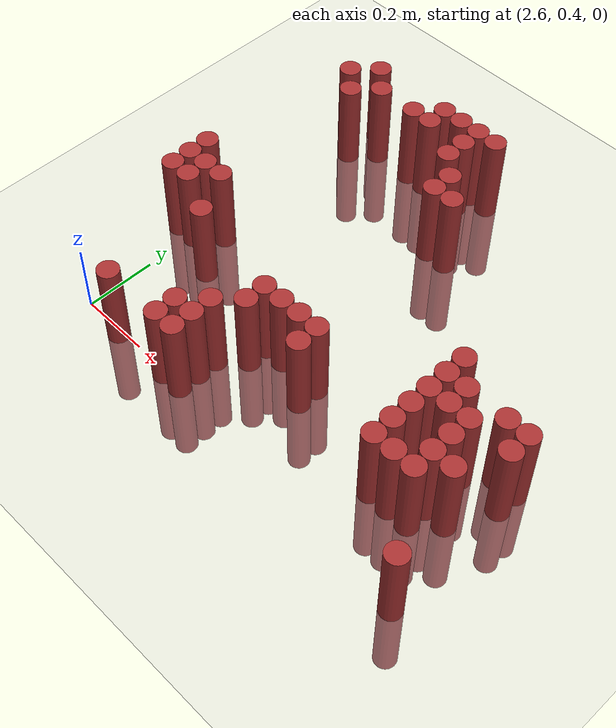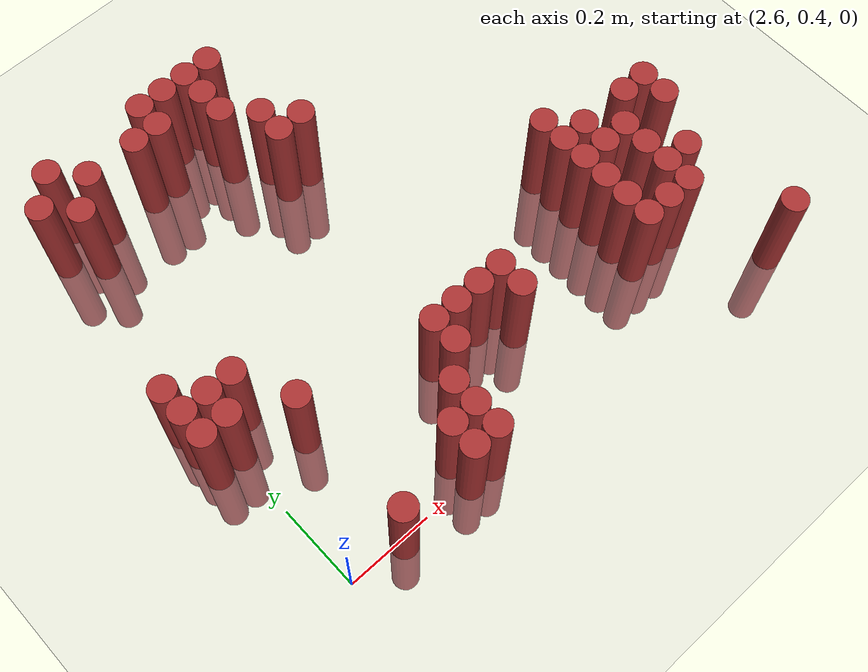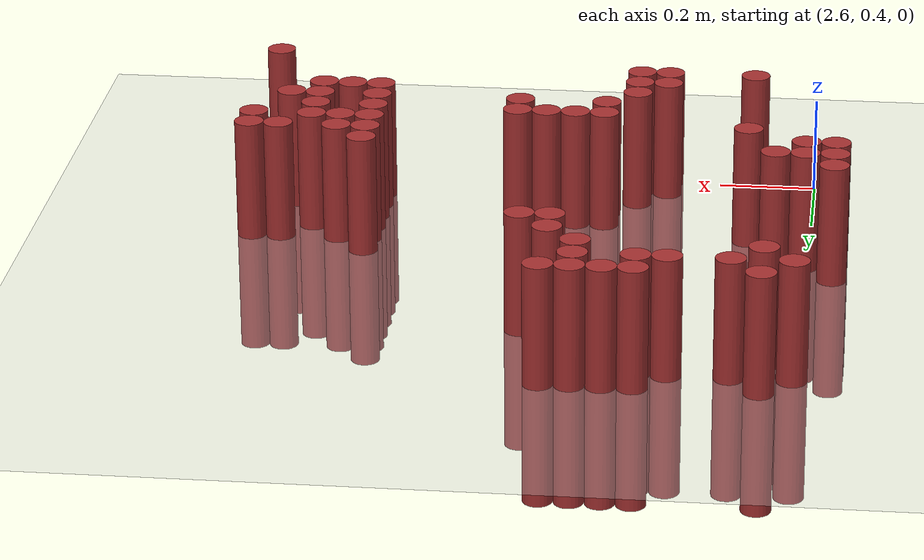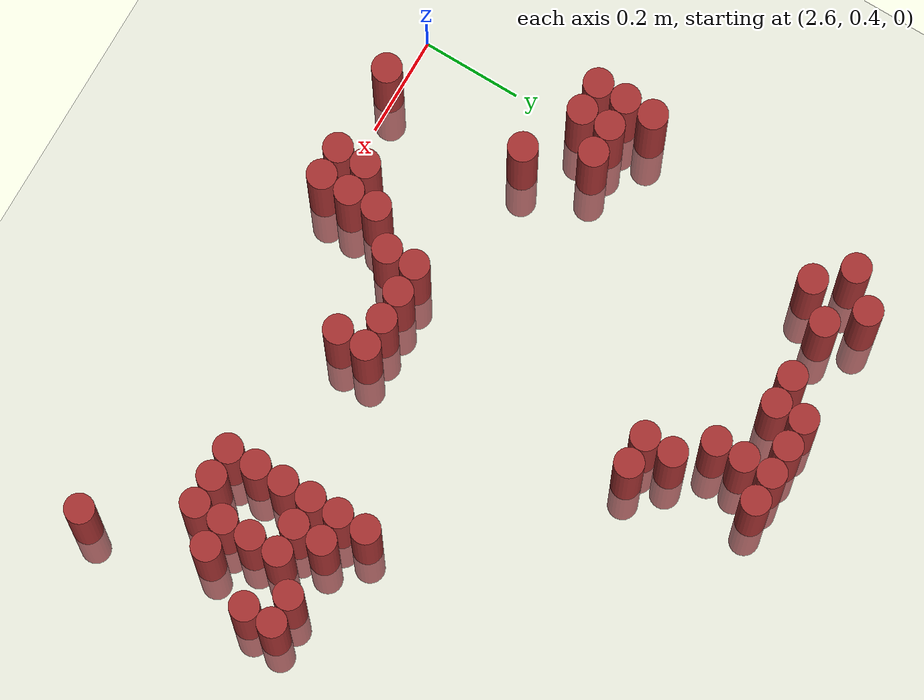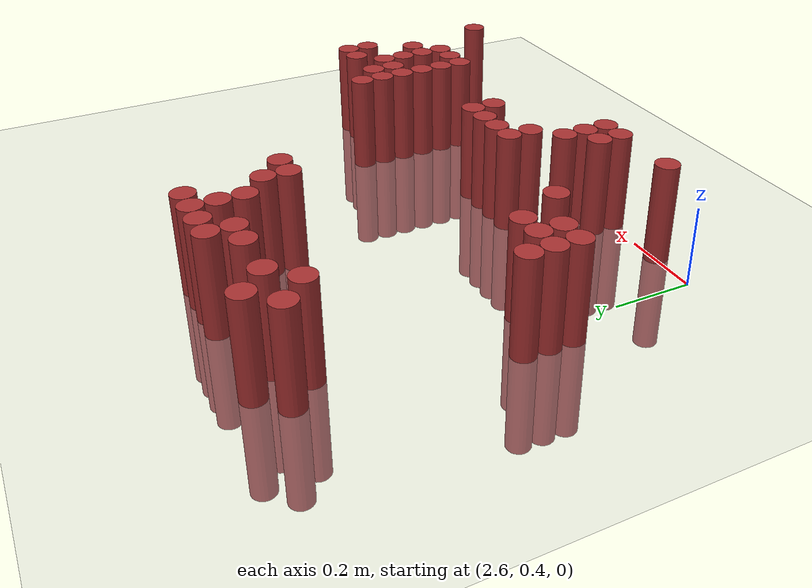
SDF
<sdf version="1.6">
 <world name="default">
  <model name="ground_plane">
   <static>1</static>
   <link name="link">
    <collision name="collision">
     <geometry><plane><normal>0 0 1</normal><size>100 100</size></plane></geometry>
     <surface><friction><ode><mu>100</mu><mu2>50</mu2></ode></friction></surface>
    </collision>
    <visual name="visual">
     <cast_shadows>0</cast_shadows>
     <geometry><plane><normal>0 0 1</normal><size>100 100</size></plane></geometry>
     <material>
      <script><uri>file://media/materials/scripts/gazebo.material</uri><name>Gazebo/Grey</name></script>
     </material>
    </visual>
   </link>
  </model>
  <model name="unit_cylinder_169">
   <static>1</static>
   <pose>2.670000 1.410000 0.000000 0.000000 0.000000 0.000000</pose>
   <link name="link">
    <inertial>
     <mass>1</mass>
     <inertia><ixx>0.145833</ixx><ixy>0</ixy><ixz>0</ixz><iyy>0.145833</iyy><iyz>0</iyz><izz>0.125</izz></inertia>
    </inertial>
    <collision name="collision">
     <geometry><cylinder><radius>0.030000</radius><length>0.5</length></cylinder></geometry>
    </collision>
    <visual name="visual">
     <geometry><cylinder><radius>0.030000</radius><length>0.5</length></cylinder></geometry>
     <material>
      <ambient>0.648000 0.192000 0.192000 1</ambient>
      <diffuse>0.648000 0.192000 0.192000 1</diffuse>
     </material>
     <material>
      <script><name>Gazebo/Grey</name><uri>file://media/materials/scripts/gazebo.material</uri></script>
     </material>
    </visual>
   </link>
  </model>
  <model name="unit_cylinder_170">
   <static>1</static>
   <pose>2.910000 1.410000 0.000000 0.000000 0.000000 0.000000</pose>
   <link name="link">
    <inertial>
     <mass>1</mass>
     <inertia><ixx>0.145833</ixx><ixy>0</ixy><ixz>0</ixz><iyy>0.145833</iyy><iyz>0</iyz><izz>0.125</izz></inertia>
    </inertial>
    <collision name="collision">
     <geometry><cylinder><radius>0.030000</radius><length>0.5</length></cylinder></geometry>
    </collision>
    <visual name="visual">
     <geometry><cylinder><radius>0.030000</radius><length>0.5</length></cylinder></geometry>
     <material>
      <ambient>0.648000 0.192000 0.192000 1</ambient>
      <diffuse>0.648000 0.192000 0.192000 1</diffuse>
     </material>
     <material>
      <script><name>Gazebo/Grey</name><uri>file://media/materials/scripts/gazebo.material</uri></script>
     </material>
    </visual>
   </link>
  </model>
  <model name="unit_cylinder_171">
   <static>1</static>
   <pose>2.970000 1.410000 0.000000 0.000000 0.000000 0.000000</pose>
   <link name="link">
    <inertial>
     <mass>1</mass>
     <inertia><ixx>0.145833</ixx><ixy>0</ixy><ixz>0</ixz><iyy>0.145833</iyy><iyz>0</iyz><izz>0.125</izz></inertia>
    </inertial>
    <collision name="collision">
     <geometry><cylinder><radius>0.030000</radius><length>0.5</length></cylinder></geometry>
    </collision>
    <visual name="visual">
     <geometry><cylinder><radius>0.030000</radius><length>0.5</length></cylinder></geometry>
     <material>
      <ambient>0.648000 0.192000 0.192000 1</ambient>
      <diffuse>0.648000 0.192000 0.192000 1</diffuse>
     </material>
     <material>
      <script><name>Gazebo/Grey</name><uri>file://media/materials/scripts/gazebo.material</uri></script>
     </material>
    </visual>
   </link>
  </model>
  <model name="unit_cylinder_172">
   <static>1</static>
   <pose>3.030000 1.410000 0.000000 0.000000 0.000000 0.000000</pose>
   <link name="link">
    <inertial>
     <mass>1</mass>
     <inertia><ixx>0.145833</ixx><ixy>0</ixy><ixz>0</ixz><iyy>0.145833</iyy><iyz>0</iyz><izz>0.125</izz></inertia>
    </inertial>
    <collision name="collision">
     <geometry><cylinder><radius>0.030000</radius><length>0.5</length></cylinder></geometry>
    </collision>
    <visual name="visual">
     <geometry><cylinder><radius>0.030000</radius><length>0.5</length></cylinder></geometry>
     <material>
      <ambient>0.648000 0.192000 0.192000 1</ambient>
      <diffuse>0.648000 0.192000 0.192000 1</diffuse>
     </material>
     <material>
      <script><name>Gazebo/Grey</name><uri>file://media/materials/scripts/gazebo.material</uri></script>
     </material>
    </visual>
   </link>
  </model>
  <model name="unit_cylinder_173">
   <static>1</static>
   <pose>3.090000 1.410000 0.000000 0.000000 0.000000 0.000000</pose>
   <link name="link">
    <inertial>
     <mass>1</mass>
     <inertia><ixx>0.145833</ixx><ixy>0</ixy><ixz>0</ixz><iyy>0.145833</iyy><iyz>0</iyz><izz>0.125</izz></inertia>
    </inertial>
    <collision name="collision">
     <geometry><cylinder><radius>0.030000</radius><length>0.5</length></cylinder></geometry>
    </collision>
    <visual name="visual">
     <geometry><cylinder><radius>0.030000</radius><length>0.5</length></cylinder></geometry>
     <material>
      <ambient>0.648000 0.192000 0.192000 1</ambient>
      <diffuse>0.648000 0.192000 0.192000 1</diffuse>
     </material>
     <material>
      <script><name>Gazebo/Grey</name><uri>file://media/materials/scripts/gazebo.material</uri></script>
     </material>
    </visual>
   </link>
  </model>
  <model name="unit_cylinder_175">
   <static>1</static>
   <pose>2.610000 1.350000 0.000000 0.000000 0.000000 0.000000</pose>
   <link name="link">
    <inertial>
     <mass>1</mass>
     <inertia><ixx>0.145833</ixx><ixy>0</ixy><ixz>0</ixz><iyy>0.145833</iyy><iyz>0</iyz><izz>0.125</izz></inertia>
    </inertial>
    <collision name="collision">
     <geometry><cylinder><radius>0.030000</radius><length>0.5</length></cylinder></geometry>
    </collision>
    <visual name="visual">
     <geometry><cylinder><radius>0.030000</radius><length>0.5</length></cylinder></geometry>
     <material>
      <ambient>0.648000 0.192000 0.192000 1</ambient>
      <diffuse>0.648000 0.192000 0.192000 1</diffuse>
     </material>
     <material>
      <script><name>Gazebo/Grey</name><uri>file://media/materials/scripts/gazebo.material</uri></script>
     </material>
    </visual>
   </link>
  </model>
  <model name="unit_cylinder_176">
   <static>1</static>
   <pose>2.730000 1.350000 0.000000 0.000000 0.000000 0.000000</pose>
   <link name="link">
    <inertial>
     <mass>1</mass>
     <inertia><ixx>0.145833</ixx><ixy>0</ixy><ixz>0</ixz><iyy>0.145833</iyy><iyz>0</iyz><izz>0.125</izz></inertia>
    </inertial>
    <collision name="collision">
     <geometry><cylinder><radius>0.030000</radius><length>0.5</length></cylinder></geometry>
    </collision>
    <visual name="visual">
     <geometry><cylinder><radius>0.030000</radius><length>0.5</length></cylinder></geometry>
     <material>
      <ambient>0.648000 0.192000 0.192000 1</ambient>
      <diffuse>0.648000 0.192000 0.192000 1</diffuse>
     </material>
     <material>
      <script><name>Gazebo/Grey</name><uri>file://media/materials/scripts/gazebo.material</uri></script>
     </material>
    </visual>
   </link>
  </model>
  <model name="unit_cylinder_177">
   <static>1</static>
   <pose>2.850000 1.350000 0.000000 0.000000 0.000000 0.000000</pose>
   <link name="link">
    <inertial>
     <mass>1</mass>
     <inertia><ixx>0.145833</ixx><ixy>0</ixy><ixz>0</ixz><iyy>0.145833</iyy><iyz>0</iyz><izz>0.125</izz></inertia>
    </inertial>
    <collision name="collision">
     <geometry><cylinder><radius>0.030000</radius><length>0.5</length></cylinder></geometry>
    </collision>
    <visual name="visual">
     <geometry><cylinder><radius>0.030000</radius><length>0.5</length></cylinder></geometry>
     <material>
      <ambient>0.648000 0.192000 0.192000 1</ambient>
      <diffuse>0.648000 0.192000 0.192000 1</diffuse>
     </material>
     <material>
      <script><name>Gazebo/Grey</name><uri>file://media/materials/scripts/gazebo.material</uri></script>
     </material>
    </visual>
   </link>
  </model>
  <model name="unit_cylinder_178">
   <static>1</static>
   <pose>2.910000 1.350000 0.000000 0.000000 0.000000 0.000000</pose>
   <link name="link">
    <inertial>
     <mass>1</mass>
     <inertia><ixx>0.145833</ixx><ixy>0</ixy><ixz>0</ixz><iyy>0.145833</iyy><iyz>0</iyz><izz>0.125</izz></inertia>
    </inertial>
    <collision name="collision">
     <geometry><cylinder><radius>0.030000</radius><length>0.5</length></cylinder></geometry>
    </collision>
    <visual name="visual">
     <geometry><cylinder><radius>0.030000</radius><length>0.5</length></cylinder></geometry>
     <material>
      <ambient>0.648000 0.192000 0.192000 1</ambient>
      <diffuse>0.648000 0.192000 0.192000 1</diffuse>
     </material>
     <material>
      <script><name>Gazebo/Grey</name><uri>file://media/materials/scripts/gazebo.material</uri></script>
     </material>
    </visual>
   </link>
  </model>
  <model name="unit_cylinder_179">
   <static>1</static>
   <pose>3.030000 1.350000 0.000000 0.000000 0.000000 0.000000</pose>
   <link name="link">
    <inertial>
     <mass>1</mass>
     <inertia><ixx>0.145833</ixx><ixy>0</ixy><ixz>0</ixz><iyy>0.145833</iyy><iyz>0</iyz><izz>0.125</izz></inertia>
    </inertial>
    <collision name="collision">
     <geometry><cylinder><radius>0.030000</radius><length>0.5</length></cylinder></geometry>
    </collision>
    <visual name="visual">
     <geometry><cylinder><radius>0.030000</radius><length>0.5</length></cylinder></geometry>
     <material>
      <ambient>0.648000 0.192000 0.192000 1</ambient>
      <diffuse>0.648000 0.192000 0.192000 1</diffuse>
     </material>
     <material>
      <script><name>Gazebo/Grey</name><uri>file://media/materials/scripts/gazebo.material</uri></script>
     </material>
    </visual>
   </link>
  </model>
  <model name="unit_cylinder_180">
   <static>1</static>
   <pose>2.670000 1.290000 0.000000 0.000000 0.000000 0.000000</pose>
   <link name="link">
    <inertial>
     <mass>1</mass>
     <inertia><ixx>0.145833</ixx><ixy>0</ixy><ixz>0</ixz><iyy>0.145833</iyy><iyz>0</iyz><izz>0.125</izz></inertia>
    </inertial>
    <collision name="collision">
     <geometry><cylinder><radius>0.030000</radius><length>0.5</length></cylinder></geometry>
    </collision>
    <visual name="visual">
     <geometry><cylinder><radius>0.030000</radius><length>0.5</length></cylinder></geometry>
     <material>
      <ambient>0.648000 0.192000 0.192000 1</ambient>
      <diffuse>0.648000 0.192000 0.192000 1</diffuse>
     </material>
     <material>
      <script><name>Gazebo/Grey</name><uri>file://media/materials/scripts/gazebo.material</uri></script>
     </material>
    </visual>
   </link>
  </model>
  <model name="unit_cylinder_181">
   <static>1</static>
   <pose>3.030000 1.290000 0.000000 0.000000 0.000000 0.000000</pose>
   <link name="link">
    <inertial>
     <mass>1</mass>
     <inertia><ixx>0.145833</ixx><ixy>0</ixy><ixz>0</ixz><iyy>0.145833</iyy><iyz>0</iyz><izz>0.125</izz></inertia>
    </inertial>
    <collision name="collision">
     <geometry><cylinder><radius>0.030000</radius><length>0.5</length></cylinder></geometry>
    </collision>
    <visual name="visual">
     <geometry><cylinder><radius>0.030000</radius><length>0.5</length></cylinder></geometry>
     <material>
      <ambient>0.648000 0.192000 0.192000 1</ambient>
      <diffuse>0.648000 0.192000 0.192000 1</diffuse>
     </material>
     <material>
      <script><name>Gazebo/Grey</name><uri>file://media/materials/scripts/gazebo.material</uri></script>
     </material>
    </visual>
   </link>
  </model>
  <model name="unit_cylinder_182">
   <static>1</static>
   <pose>3.090000 1.230000 0.000000 0.000000 0.000000 0.000000</pose>
   <link name="link">
    <inertial>
     <mass>1</mass>
     <inertia><ixx>0.145833</ixx><ixy>0</ixy><ixz>0</ixz><iyy>0.145833</iyy><iyz>0</iyz><izz>0.125</izz></inertia>
    </inertial>
    <collision name="collision">
     <geometry><cylinder><radius>0.030000</radius><length>0.5</length></cylinder></geometry>
    </collision>
    <visual name="visual">
     <geometry><cylinder><radius>0.030000</radius><length>0.5</length></cylinder></geometry>
     <material>
      <ambient>0.648000 0.192000 0.192000 1</ambient>
      <diffuse>0.648000 0.192000 0.192000 1</diffuse>
     </material>
     <material>
      <script><name>Gazebo/Grey</name><uri>file://media/materials/scripts/gazebo.material</uri></script>
     </material>
    </visual>
   </link>
  </model>
  <model name="unit_cylinder_183">
   <static>1</static>
   <pose>3.090000 1.170000 0.000000 0.000000 0.000000 0.000000</pose>
   <link name="link">
    <inertial>
     <mass>1</mass>
     <inertia><ixx>0.145833</ixx><ixy>0</ixy><ixz>0</ixz><iyy>0.145833</iyy><iyz>0</iyz><izz>0.125</izz></inertia>
    </inertial>
    <collision name="collision">
     <geometry><cylinder><radius>0.030000</radius><length>0.5</length></cylinder></geometry>
    </collision>
    <visual name="visual">
     <geometry><cylinder><radius>0.030000</radius><length>0.5</length></cylinder></geometry>
     <material>
      <ambient>0.648000 0.192000 0.192000 1</ambient>
      <diffuse>0.648000 0.192000 0.192000 1</diffuse>
     </material>
     <material>
      <script><name>Gazebo/Grey</name><uri>file://media/materials/scripts/gazebo.material</uri></script>
     </material>
    </visual>
   </link>
  </model>
  <model name="unit_cylinder_184">
   <static>1</static>
   <pose>3.150000 1.170000 0.000000 0.000000 0.000000 0.000000</pose>
   <link name="link">
    <inertial>
     <mass>1</mass>
     <inertia><ixx>0.145833</ixx><ixy>0</ixy><ixz>0</ixz><iyy>0.145833</iyy><iyz>0</iyz><izz>0.125</izz></inertia>
    </inertial>
    <collision name="collision">
     <geometry><cylinder><radius>0.030000</radius><length>0.5</length></cylinder></geometry>
    </collision>
    <visual name="visual">
     <geometry><cylinder><radius>0.030000</radius><length>0.5</length></cylinder></geometry>
     <material>
      <ambient>0.648000 0.192000 0.192000 1</ambient>
      <diffuse>0.648000 0.192000 0.192000 1</diffuse>
     </material>
     <material>
      <script><name>Gazebo/Grey</name><uri>file://media/materials/scripts/gazebo.material</uri></script>
     </material>
    </visual>
   </link>
  </model>
  <model name="unit_cylinder_187">
   <static>1</static>
   <pose>2.550000 0.870000 0.000000 0.000000 0.000000 0.000000</pose>
   <link name="link">
    <inertial>
     <mass>1</mass>
     <inertia><ixx>0.145833</ixx><ixy>0</ixy><ixz>0</ixz><iyy>0.145833</iyy><iyz>0</iyz><izz>0.125</izz></inertia>
    </inertial>
    <collision name="collision">
     <geometry><cylinder><radius>0.030000</radius><length>0.5</length></cylinder></geometry>
    </collision>
    <visual name="visual">
     <geometry><cylinder><radius>0.030000</radius><length>0.5</length></cylinder></geometry>
     <material>
      <ambient>0.648000 0.192000 0.192000 1</ambient>
      <diffuse>0.648000 0.192000 0.192000 1</diffuse>
     </material>
     <material>
      <script><name>Gazebo/Grey</name><uri>file://media/materials/scripts/gazebo.material</uri></script>
     </material>
    </visual>
   </link>
  </model>
  <model name="unit_cylinder_193">
   <static>1</static>
   <pose>2.550000 0.810000 0.000000 0.000000 0.000000 0.000000</pose>
   <link name="link">
    <inertial>
     <mass>1</mass>
     <inertia><ixx>0.145833</ixx><ixy>0</ixy><ixz>0</ixz><iyy>0.145833</iyy><iyz>0</iyz><izz>0.125</izz></inertia>
    </inertial>
    <collision name="collision">
     <geometry><cylinder><radius>0.030000</radius><length>0.5</length></cylinder></geometry>
    </collision>
    <visual name="visual">
     <geometry><cylinder><radius>0.030000</radius><length>0.5</length></cylinder></geometry>
     <material>
      <ambient>0.648000 0.192000 0.192000 1</ambient>
      <diffuse>0.648000 0.192000 0.192000 1</diffuse>
     </material>
     <material>
      <script><name>Gazebo/Grey</name><uri>file://media/materials/scripts/gazebo.material</uri></script>
     </material>
    </visual>
   </link>
  </model>
  <model name="unit_cylinder_194">
   <static>1</static>
   <pose>2.610000 0.810000 0.000000 0.000000 0.000000 0.000000</pose>
   <link name="link">
    <inertial>
     <mass>1</mass>
     <inertia><ixx>0.145833</ixx><ixy>0</ixy><ixz>0</ixz><iyy>0.145833</iyy><iyz>0</iyz><izz>0.125</izz></inertia>
    </inertial>
    <collision name="collision">
     <geometry><cylinder><radius>0.030000</radius><length>0.5</length></cylinder></geometry>
    </collision>
    <visual name="visual">
     <geometry><cylinder><radius>0.030000</radius><length>0.5</length></cylinder></geometry>
     <material>
      <ambient>0.648000 0.192000 0.192000 1</ambient>
      <diffuse>0.648000 0.192000 0.192000 1</diffuse>
     </material>
     <material>
      <script><name>Gazebo/Grey</name><uri>file://media/materials/scripts/gazebo.material</uri></script>
     </material>
    </visual>
   </link>
  </model>
  <model name="unit_cylinder_195">
   <static>1</static>
   <pose>2.670000 0.810000 0.000000 0.000000 0.000000 0.000000</pose>
   <link name="link">
    <inertial>
     <mass>1</mass>
     <inertia><ixx>0.145833</ixx><ixy>0</ixy><ixz>0</ixz><iyy>0.145833</iyy><iyz>0</iyz><izz>0.125</izz></inertia>
    </inertial>
    <collision name="collision">
     <geometry><cylinder><radius>0.030000</radius><length>0.5</length></cylinder></geometry>
    </collision>
    <visual name="visual">
     <geometry><cylinder><radius>0.030000</radius><length>0.5</length></cylinder></geometry>
     <material>
      <ambient>0.648000 0.192000 0.192000 1</ambient>
      <diffuse>0.648000 0.192000 0.192000 1</diffuse>
     </material>
     <material>
      <script><name>Gazebo/Grey</name><uri>file://media/materials/scripts/gazebo.material</uri></script>
     </material>
    </visual>
   </link>
  </model>
  <model name="unit_cylinder_196">
   <static>1</static>
   <pose>3.510000 0.810000 0.000000 0.000000 0.000000 0.000000</pose>
   <link name="link">
    <inertial>
     <mass>1</mass>
     <inertia><ixx>0.145833</ixx><ixy>0</ixy><ixz>0</ixz><iyy>0.145833</iyy><iyz>0</iyz><izz>0.125</izz></inertia>
    </inertial>
    <collision name="collision">
     <geometry><cylinder><radius>0.030000</radius><length>0.5</length></cylinder></geometry>
    </collision>
    <visual name="visual">
     <geometry><cylinder><radius>0.030000</radius><length>0.5</length></cylinder></geometry>
     <material>
      <ambient>0.648000 0.192000 0.192000 1</ambient>
      <diffuse>0.648000 0.192000 0.192000 1</diffuse>
     </material>
     <material>
      <script><name>Gazebo/Grey</name><uri>file://media/materials/scripts/gazebo.material</uri></script>
     </material>
    </visual>
   </link>
  </model>
  <model name="unit_cylinder_202">
   <static>1</static>
   <pose>2.550000 0.750000 0.000000 0.000000 0.000000 0.000000</pose>
   <link name="link">
    <inertial>
     <mass>1</mass>
     <inertia><ixx>0.145833</ixx><ixy>0</ixy><ixz>0</ixz><iyy>0.145833</iyy><iyz>0</iyz><izz>0.125</izz></inertia>
    </inertial>
    <collision name="collision">
     <geometry><cylinder><radius>0.030000</radius><length>0.5</length></cylinder></geometry>
    </collision>
    <visual name="visual">
     <geometry><cylinder><radius>0.030000</radius><length>0.5</length></cylinder></geometry>
     <material>
      <ambient>0.648000 0.192000 0.192000 1</ambient>
      <diffuse>0.648000 0.192000 0.192000 1</diffuse>
     </material>
     <material>
      <script><name>Gazebo/Grey</name><uri>file://media/materials/scripts/gazebo.material</uri></script>
     </material>
    </visual>
   </link>
  </model>
  <model name="unit_cylinder_203">
   <static>1</static>
   <pose>2.610000 0.750000 0.000000 0.000000 0.000000 0.000000</pose>
   <link name="link">
    <inertial>
     <mass>1</mass>
     <inertia><ixx>0.145833</ixx><ixy>0</ixy><ixz>0</ixz><iyy>0.145833</iyy><iyz>0</iyz><izz>0.125</izz></inertia>
    </inertial>
    <collision name="collision">
     <geometry><cylinder><radius>0.030000</radius><length>0.5</length></cylinder></geometry>
    </collision>
    <visual name="visual">
     <geometry><cylinder><radius>0.030000</radius><length>0.5</length></cylinder></geometry>
     <material>
      <ambient>0.648000 0.192000 0.192000 1</ambient>
      <diffuse>0.648000 0.192000 0.192000 1</diffuse>
     </material>
     <material>
      <script><name>Gazebo/Grey</name><uri>file://media/materials/scripts/gazebo.material</uri></script>
     </material>
    </visual>
   </link>
  </model>
  <model name="unit_cylinder_204">
   <static>1</static>
   <pose>3.510000 0.750000 0.000000 0.000000 0.000000 0.000000</pose>
   <link name="link">
    <inertial>
     <mass>1</mass>
     <inertia><ixx>0.145833</ixx><ixy>0</ixy><ixz>0</ixz><iyy>0.145833</iyy><iyz>0</iyz><izz>0.125</izz></inertia>
    </inertial>
    <collision name="collision">
     <geometry><cylinder><radius>0.030000</radius><length>0.5</length></cylinder></geometry>
    </collision>
    <visual name="visual">
     <geometry><cylinder><radius>0.030000</radius><length>0.5</length></cylinder></geometry>
     <material>
      <ambient>0.648000 0.192000 0.192000 1</ambient>
      <diffuse>0.648000 0.192000 0.192000 1</diffuse>
     </material>
     <material>
      <script><name>Gazebo/Grey</name><uri>file://media/materials/scripts/gazebo.material</uri></script>
     </material>
    </visual>
   </link>
  </model>
  <model name="unit_cylinder_205">
   <static>1</static>
   <pose>3.570000 0.750000 0.000000 0.000000 0.000000 0.000000</pose>
   <link name="link">
    <inertial>
     <mass>1</mass>
     <inertia><ixx>0.145833</ixx><ixy>0</ixy><ixz>0</ixz><iyy>0.145833</iyy><iyz>0</iyz><izz>0.125</izz></inertia>
    </inertial>
    <collision name="collision">
     <geometry><cylinder><radius>0.030000</radius><length>0.5</length></cylinder></geometry>
    </collision>
    <visual name="visual">
     <geometry><cylinder><radius>0.030000</radius><length>0.5</length></cylinder></geometry>
     <material>
      <ambient>0.648000 0.192000 0.192000 1</ambient>
      <diffuse>0.648000 0.192000 0.192000 1</diffuse>
     </material>
     <material>
      <script><name>Gazebo/Grey</name><uri>file://media/materials/scripts/gazebo.material</uri></script>
     </material>
    </visual>
   </link>
  </model>
  <model name="unit_cylinder_206">
   <static>1</static>
   <pose>3.690000 0.750000 0.000000 0.000000 0.000000 0.000000</pose>
   <link name="link">
    <inertial>
     <mass>1</mass>
     <inertia><ixx>0.145833</ixx><ixy>0</ixy><ixz>0</ixz><iyy>0.145833</iyy><iyz>0</iyz><izz>0.125</izz></inertia>
    </inertial>
    <collision name="collision">
     <geometry><cylinder><radius>0.030000</radius><length>0.5</length></cylinder></geometry>
    </collision>
    <visual name="visual">
     <geometry><cylinder><radius>0.030000</radius><length>0.5</length></cylinder></geometry>
     <material>
      <ambient>0.648000 0.192000 0.192000 1</ambient>
      <diffuse>0.648000 0.192000 0.192000 1</diffuse>
     </material>
     <material>
      <script><name>Gazebo/Grey</name><uri>file://media/materials/scripts/gazebo.material</uri></script>
     </material>
    </visual>
   </link>
  </model>
  <model name="unit_cylinder_207">
   <static>1</static>
   <pose>3.750000 0.750000 0.000000 0.000000 0.000000 0.000000</pose>
   <link name="link">
    <inertial>
     <mass>1</mass>
     <inertia><ixx>0.145833</ixx><ixy>0</ixy><ixz>0</ixz><iyy>0.145833</iyy><iyz>0</iyz><izz>0.125</izz></inertia>
    </inertial>
    <collision name="collision">
     <geometry><cylinder><radius>0.030000</radius><length>0.5</length></cylinder></geometry>
    </collision>
    <visual name="visual">
     <geometry><cylinder><radius>0.030000</radius><length>0.5</length></cylinder></geometry>
     <material>
      <ambient>0.648000 0.192000 0.192000 1</ambient>
      <diffuse>0.648000 0.192000 0.192000 1</diffuse>
     </material>
     <material>
      <script><name>Gazebo/Grey</name><uri>file://media/materials/scripts/gazebo.material</uri></script>
     </material>
    </visual>
   </link>
  </model>
  <model name="unit_cylinder_213">
   <static>1</static>
   <pose>2.730000 0.690000 0.000000 0.000000 0.000000 0.000000</pose>
   <link name="link">
    <inertial>
     <mass>1</mass>
     <inertia><ixx>0.145833</ixx><ixy>0</ixy><ixz>0</ixz><iyy>0.145833</iyy><iyz>0</iyz><izz>0.125</izz></inertia>
    </inertial>
    <collision name="collision">
     <geometry><cylinder><radius>0.030000</radius><length>0.5</length></cylinder></geometry>
    </collision>
    <visual name="visual">
     <geometry><cylinder><radius>0.030000</radius><length>0.5</length></cylinder></geometry>
     <material>
      <ambient>0.648000 0.192000 0.192000 1</ambient>
      <diffuse>0.648000 0.192000 0.192000 1</diffuse>
     </material>
     <material>
      <script><name>Gazebo/Grey</name><uri>file://media/materials/scripts/gazebo.material</uri></script>
     </material>
    </visual>
   </link>
  </model>
  <model name="unit_cylinder_214">
   <static>1</static>
   <pose>3.510000 0.690000 0.000000 0.000000 0.000000 0.000000</pose>
   <link name="link">
    <inertial>
     <mass>1</mass>
     <inertia><ixx>0.145833</ixx><ixy>0</ixy><ixz>0</ixz><iyy>0.145833</iyy><iyz>0</iyz><izz>0.125</izz></inertia>
    </inertial>
    <collision name="collision">
     <geometry><cylinder><radius>0.030000</radius><length>0.5</length></cylinder></geometry>
    </collision>
    <visual name="visual">
     <geometry><cylinder><radius>0.030000</radius><length>0.5</length></cylinder></geometry>
     <material>
      <ambient>0.648000 0.192000 0.192000 1</ambient>
      <diffuse>0.648000 0.192000 0.192000 1</diffuse>
     </material>
     <material>
      <script><name>Gazebo/Grey</name><uri>file://media/materials/scripts/gazebo.material</uri></script>
     </material>
    </visual>
   </link>
  </model>
  <model name="unit_cylinder_215">
   <static>1</static>
   <pose>3.570000 0.690000 0.000000 0.000000 0.000000 0.000000</pose>
   <link name="link">
    <inertial>
     <mass>1</mass>
     <inertia><ixx>0.145833</ixx><ixy>0</ixy><ixz>0</ixz><iyy>0.145833</iyy><iyz>0</iyz><izz>0.125</izz></inertia>
    </inertial>
    <collision name="collision">
     <geometry><cylinder><radius>0.030000</radius><length>0.5</length></cylinder></geometry>
    </collision>
    <visual name="visual">
     <geometry><cylinder><radius>0.030000</radius><length>0.5</length></cylinder></geometry>
     <material>
      <ambient>0.648000 0.192000 0.192000 1</ambient>
      <diffuse>0.648000 0.192000 0.192000 1</diffuse>
     </material>
     <material>
      <script><name>Gazebo/Grey</name><uri>file://media/materials/scripts/gazebo.material</uri></script>
     </material>
    </visual>
   </link>
  </model>
  <model name="unit_cylinder_216">
   <static>1</static>
   <pose>3.630000 0.690000 0.000000 0.000000 0.000000 0.000000</pose>
   <link name="link">
    <inertial>
     <mass>1</mass>
     <inertia><ixx>0.145833</ixx><ixy>0</ixy><ixz>0</ixz><iyy>0.145833</iyy><iyz>0</iyz><izz>0.125</izz></inertia>
    </inertial>
    <collision name="collision">
     <geometry><cylinder><radius>0.030000</radius><length>0.5</length></cylinder></geometry>
    </collision>
    <visual name="visual">
     <geometry><cylinder><radius>0.030000</radius><length>0.5</length></cylinder></geometry>
     <material>
      <ambient>0.648000 0.192000 0.192000 1</ambient>
      <diffuse>0.648000 0.192000 0.192000 1</diffuse>
     </material>
     <material>
      <script><name>Gazebo/Grey</name><uri>file://media/materials/scripts/gazebo.material</uri></script>
     </material>
    </visual>
   </link>
  </model>
  <model name="unit_cylinder_217">
   <static>1</static>
   <pose>3.750000 0.690000 0.000000 0.000000 0.000000 0.000000</pose>
   <link name="link">
    <inertial>
     <mass>1</mass>
     <inertia><ixx>0.145833</ixx><ixy>0</ixy><ixz>0</ixz><iyy>0.145833</iyy><iyz>0</iyz><izz>0.125</izz></inertia>
    </inertial>
    <collision name="collision">
     <geometry><cylinder><radius>0.030000</radius><length>0.5</length></cylinder></geometry>
    </collision>
    <visual name="visual">
     <geometry><cylinder><radius>0.030000</radius><length>0.5</length></cylinder></geometry>
     <material>
      <ambient>0.648000 0.192000 0.192000 1</ambient>
      <diffuse>0.648000 0.192000 0.192000 1</diffuse>
     </material>
     <material>
      <script><name>Gazebo/Grey</name><uri>file://media/materials/scripts/gazebo.material</uri></script>
     </material>
    </visual>
   </link>
  </model>
  <model name="unit_cylinder_221">
   <static>1</static>
   <pose>3.030000 0.630000 0.000000 0.000000 0.000000 0.000000</pose>
   <link name="link">
    <inertial>
     <mass>1</mass>
     <inertia><ixx>0.145833</ixx><ixy>0</ixy><ixz>0</ixz><iyy>0.145833</iyy><iyz>0</iyz><izz>0.125</izz></inertia>
    </inertial>
    <collision name="collision">
     <geometry><cylinder><radius>0.030000</radius><length>0.5</length></cylinder></geometry>
    </collision>
    <visual name="visual">
     <geometry><cylinder><radius>0.030000</radius><length>0.5</length></cylinder></geometry>
     <material>
      <ambient>0.648000 0.192000 0.192000 1</ambient>
      <diffuse>0.648000 0.192000 0.192000 1</diffuse>
     </material>
     <material>
      <script><name>Gazebo/Grey</name><uri>file://media/materials/scripts/gazebo.material</uri></script>
     </material>
    </visual>
   </link>
  </model>
  <model name="unit_cylinder_222">
   <static>1</static>
   <pose>3.090000 0.630000 0.000000 0.000000 0.000000 0.000000</pose>
   <link name="link">
    <inertial>
     <mass>1</mass>
     <inertia><ixx>0.145833</ixx><ixy>0</ixy><ixz>0</ixz><iyy>0.145833</iyy><iyz>0</iyz><izz>0.125</izz></inertia>
    </inertial>
    <collision name="collision">
     <geometry><cylinder><radius>0.030000</radius><length>0.5</length></cylinder></geometry>
    </collision>
    <visual name="visual">
     <geometry><cylinder><radius>0.030000</radius><length>0.5</length></cylinder></geometry>
     <material>
      <ambient>0.648000 0.192000 0.192000 1</ambient>
      <diffuse>0.648000 0.192000 0.192000 1</diffuse>
     </material>
     <material>
      <script><name>Gazebo/Grey</name><uri>file://media/materials/scripts/gazebo.material</uri></script>
     </material>
    </visual>
   </link>
  </model>
  <model name="unit_cylinder_223">
   <static>1</static>
   <pose>3.150000 0.630000 0.000000 0.000000 0.000000 0.000000</pose>
   <link name="link">
    <inertial>
     <mass>1</mass>
     <inertia><ixx>0.145833</ixx><ixy>0</ixy><ixz>0</ixz><iyy>0.145833</iyy><iyz>0</iyz><izz>0.125</izz></inertia>
    </inertial>
    <collision name="collision">
     <geometry><cylinder><radius>0.030000</radius><length>0.5</length></cylinder></geometry>
    </collision>
    <visual name="visual">
     <geometry><cylinder><radius>0.030000</radius><length>0.5</length></cylinder></geometry>
     <material>
      <ambient>0.648000 0.192000 0.192000 1</ambient>
      <diffuse>0.648000 0.192000 0.192000 1</diffuse>
     </material>
     <material>
      <script><name>Gazebo/Grey</name><uri>file://media/materials/scripts/gazebo.material</uri></script>
     </material>
    </visual>
   </link>
  </model>
  <model name="unit_cylinder_224">
   <static>1</static>
   <pose>3.210000 0.630000 0.000000 0.000000 0.000000 0.000000</pose>
   <link name="link">
    <inertial>
     <mass>1</mass>
     <inertia><ixx>0.145833</ixx><ixy>0</ixy><ixz>0</ixz><iyy>0.145833</iyy><iyz>0</iyz><izz>0.125</izz></inertia>
    </inertial>
    <collision name="collision">
     <geometry><cylinder><radius>0.030000</radius><length>0.5</length></cylinder></geometry>
    </collision>
    <visual name="visual">
     <geometry><cylinder><radius>0.030000</radius><length>0.5</length></cylinder></geometry>
     <material>
      <ambient>0.648000 0.192000 0.192000 1</ambient>
      <diffuse>0.648000 0.192000 0.192000 1</diffuse>
     </material>
     <material>
      <script><name>Gazebo/Grey</name><uri>file://media/materials/scripts/gazebo.material</uri></script>
     </material>
    </visual>
   </link>
  </model>
  <model name="unit_cylinder_225">
   <static>1</static>
   <pose>3.510000 0.630000 0.000000 0.000000 0.000000 0.000000</pose>
   <link name="link">
    <inertial>
     <mass>1</mass>
     <inertia><ixx>0.145833</ixx><ixy>0</ixy><ixz>0</ixz><iyy>0.145833</iyy><iyz>0</iyz><izz>0.125</izz></inertia>
    </inertial>
    <collision name="collision">
     <geometry><cylinder><radius>0.030000</radius><length>0.5</length></cylinder></geometry>
    </collision>
    <visual name="visual">
     <geometry><cylinder><radius>0.030000</radius><length>0.5</length></cylinder></geometry>
     <material>
      <ambient>0.648000 0.192000 0.192000 1</ambient>
      <diffuse>0.648000 0.192000 0.192000 1</diffuse>
     </material>
     <material>
      <script><name>Gazebo/Grey</name><uri>file://media/materials/scripts/gazebo.material</uri></script>
     </material>
    </visual>
   </link>
  </model>
  <model name="unit_cylinder_226">
   <static>1</static>
   <pose>3.630000 0.630000 0.000000 0.000000 0.000000 0.000000</pose>
   <link name="link">
    <inertial>
     <mass>1</mass>
     <inertia><ixx>0.145833</ixx><ixy>0</ixy><ixz>0</ixz><iyy>0.145833</iyy><iyz>0</iyz><izz>0.125</izz></inertia>
    </inertial>
    <collision name="collision">
     <geometry><cylinder><radius>0.030000</radius><length>0.5</length></cylinder></geometry>
    </collision>
    <visual name="visual">
     <geometry><cylinder><radius>0.030000</radius><length>0.5</length></cylinder></geometry>
     <material>
      <ambient>0.648000 0.192000 0.192000 1</ambient>
      <diffuse>0.648000 0.192000 0.192000 1</diffuse>
     </material>
     <material>
      <script><name>Gazebo/Grey</name><uri>file://media/materials/scripts/gazebo.material</uri></script>
     </material>
    </visual>
   </link>
  </model>
  <model name="unit_cylinder_229">
   <static>1</static>
   <pose>3.030000 0.570000 0.000000 0.000000 0.000000 0.000000</pose>
   <link name="link">
    <inertial>
     <mass>1</mass>
     <inertia><ixx>0.145833</ixx><ixy>0</ixy><ixz>0</ixz><iyy>0.145833</iyy><iyz>0</iyz><izz>0.125</izz></inertia>
    </inertial>
    <collision name="collision">
     <geometry><cylinder><radius>0.030000</radius><length>0.5</length></cylinder></geometry>
    </collision>
    <visual name="visual">
     <geometry><cylinder><radius>0.030000</radius><length>0.5</length></cylinder></geometry>
     <material>
      <ambient>0.648000 0.192000 0.192000 1</ambient>
      <diffuse>0.648000 0.192000 0.192000 1</diffuse>
     </material>
     <material>
      <script><name>Gazebo/Grey</name><uri>file://media/materials/scripts/gazebo.material</uri></script>
     </material>
    </visual>
   </link>
  </model>
  <model name="unit_cylinder_230">
   <static>1</static>
   <pose>3.210000 0.570000 0.000000 0.000000 0.000000 0.000000</pose>
   <link name="link">
    <inertial>
     <mass>1</mass>
     <inertia><ixx>0.145833</ixx><ixy>0</ixy><ixz>0</ixz><iyy>0.145833</iyy><iyz>0</iyz><izz>0.125</izz></inertia>
    </inertial>
    <collision name="collision">
     <geometry><cylinder><radius>0.030000</radius><length>0.5</length></cylinder></geometry>
    </collision>
    <visual name="visual">
     <geometry><cylinder><radius>0.030000</radius><length>0.5</length></cylinder></geometry>
     <material>
      <ambient>0.648000 0.192000 0.192000 1</ambient>
      <diffuse>0.648000 0.192000 0.192000 1</diffuse>
     </material>
     <material>
      <script><name>Gazebo/Grey</name><uri>file://media/materials/scripts/gazebo.material</uri></script>
     </material>
    </visual>
   </link>
  </model>
  <model name="unit_cylinder_231">
   <static>1</static>
   <pose>3.510000 0.570000 0.000000 0.000000 0.000000 0.000000</pose>
   <link name="link">
    <inertial>
     <mass>1</mass>
     <inertia><ixx>0.145833</ixx><ixy>0</ixy><ixz>0</ixz><iyy>0.145833</iyy><iyz>0</iyz><izz>0.125</izz></inertia>
    </inertial>
    <collision name="collision">
     <geometry><cylinder><radius>0.030000</radius><length>0.5</length></cylinder></geometry>
    </collision>
    <visual name="visual">
     <geometry><cylinder><radius>0.030000</radius><length>0.5</length></cylinder></geometry>
     <material>
      <ambient>0.648000 0.192000 0.192000 1</ambient>
      <diffuse>0.648000 0.192000 0.192000 1</diffuse>
     </material>
     <material>
      <script><name>Gazebo/Grey</name><uri>file://media/materials/scripts/gazebo.material</uri></script>
     </material>
    </visual>
   </link>
  </model>
  <model name="unit_cylinder_232">
   <static>1</static>
   <pose>3.630000 0.570000 0.000000 0.000000 0.000000 0.000000</pose>
   <link name="link">
    <inertial>
     <mass>1</mass>
     <inertia><ixx>0.145833</ixx><ixy>0</ixy><ixz>0</ixz><iyy>0.145833</iyy><iyz>0</iyz><izz>0.125</izz></inertia>
    </inertial>
    <collision name="collision">
     <geometry><cylinder><radius>0.030000</radius><length>0.5</length></cylinder></geometry>
    </collision>
    <visual name="visual">
     <geometry><cylinder><radius>0.030000</radius><length>0.5</length></cylinder></geometry>
     <material>
      <ambient>0.648000 0.192000 0.192000 1</ambient>
      <diffuse>0.648000 0.192000 0.192000 1</diffuse>
     </material>
     <material>
      <script><name>Gazebo/Grey</name><uri>file://media/materials/scripts/gazebo.material</uri></script>
     </material>
    </visual>
   </link>
  </model>
  <model name="unit_cylinder_233">
   <static>1</static>
   <pose>3.690000 0.570000 0.000000 0.000000 0.000000 0.000000</pose>
   <link name="link">
    <inertial>
     <mass>1</mass>
     <inertia><ixx>0.145833</ixx><ixy>0</ixy><ixz>0</ixz><iyy>0.145833</iyy><iyz>0</iyz><izz>0.125</izz></inertia>
    </inertial>
    <collision name="collision">
     <geometry><cylinder><radius>0.030000</radius><length>0.5</length></cylinder></geometry>
    </collision>
    <visual name="visual">
     <geometry><cylinder><radius>0.030000</radius><length>0.5</length></cylinder></geometry>
     <material>
      <ambient>0.648000 0.192000 0.192000 1</ambient>
      <diffuse>0.648000 0.192000 0.192000 1</diffuse>
     </material>
     <material>
      <script><name>Gazebo/Grey</name><uri>file://media/materials/scripts/gazebo.material</uri></script>
     </material>
    </visual>
   </link>
  </model>
  <model name="unit_cylinder_235">
   <static>1</static>
   <pose>2.970000 0.510000 0.000000 0.000000 0.000000 0.000000</pose>
   <link name="link">
    <inertial>
     <mass>1</mass>
     <inertia><ixx>0.145833</ixx><ixy>0</ixy><ixz>0</ixz><iyy>0.145833</iyy><iyz>0</iyz><izz>0.125</izz></inertia>
    </inertial>
    <collision name="collision">
     <geometry><cylinder><radius>0.030000</radius><length>0.5</length></cylinder></geometry>
    </collision>
    <visual name="visual">
     <geometry><cylinder><radius>0.030000</radius><length>0.5</length></cylinder></geometry>
     <material>
      <ambient>0.648000 0.192000 0.192000 1</ambient>
      <diffuse>0.648000 0.192000 0.192000 1</diffuse>
     </material>
     <material>
      <script><name>Gazebo/Grey</name><uri>file://media/materials/scripts/gazebo.material</uri></script>
     </material>
    </visual>
   </link>
  </model>
  <model name="unit_cylinder_236">
   <static>1</static>
   <pose>3.510000 0.510000 0.000000 0.000000 0.000000 0.000000</pose>
   <link name="link">
    <inertial>
     <mass>1</mass>
     <inertia><ixx>0.145833</ixx><ixy>0</ixy><ixz>0</ixz><iyy>0.145833</iyy><iyz>0</iyz><izz>0.125</izz></inertia>
    </inertial>
    <collision name="collision">
     <geometry><cylinder><radius>0.030000</radius><length>0.5</length></cylinder></geometry>
    </collision>
    <visual name="visual">
     <geometry><cylinder><radius>0.030000</radius><length>0.5</length></cylinder></geometry>
     <material>
      <ambient>0.648000 0.192000 0.192000 1</ambient>
      <diffuse>0.648000 0.192000 0.192000 1</diffuse>
     </material>
     <material>
      <script><name>Gazebo/Grey</name><uri>file://media/materials/scripts/gazebo.material</uri></script>
     </material>
    </visual>
   </link>
  </model>
  <model name="unit_cylinder_237">
   <static>1</static>
   <pose>3.570000 0.510000 0.000000 0.000000 0.000000 0.000000</pose>
   <link name="link">
    <inertial>
     <mass>1</mass>
     <inertia><ixx>0.145833</ixx><ixy>0</ixy><ixz>0</ixz><iyy>0.145833</iyy><iyz>0</iyz><izz>0.125</izz></inertia>
    </inertial>
    <collision name="collision">
     <geometry><cylinder><radius>0.030000</radius><length>0.5</length></cylinder></geometry>
    </collision>
    <visual name="visual">
     <geometry><cylinder><radius>0.030000</radius><length>0.5</length></cylinder></geometry>
     <material>
      <ambient>0.648000 0.192000 0.192000 1</ambient>
      <diffuse>0.648000 0.192000 0.192000 1</diffuse>
     </material>
     <material>
      <script><name>Gazebo/Grey</name><uri>file://media/materials/scripts/gazebo.material</uri></script>
     </material>
    </visual>
   </link>
  </model>
  <model name="unit_cylinder_238">
   <static>1</static>
   <pose>3.630000 0.510000 0.000000 0.000000 0.000000 0.000000</pose>
   <link name="link">
    <inertial>
     <mass>1</mass>
     <inertia><ixx>0.145833</ixx><ixy>0</ixy><ixz>0</ixz><iyy>0.145833</iyy><iyz>0</iyz><izz>0.125</izz></inertia>
    </inertial>
    <collision name="collision">
     <geometry><cylinder><radius>0.030000</radius><length>0.5</length></cylinder></geometry>
    </collision>
    <visual name="visual">
     <geometry><cylinder><radius>0.030000</radius><length>0.5</length></cylinder></geometry>
     <material>
      <ambient>0.648000 0.192000 0.192000 1</ambient>
      <diffuse>0.648000 0.192000 0.192000 1</diffuse>
     </material>
     <material>
      <script><name>Gazebo/Grey</name><uri>file://media/materials/scripts/gazebo.material</uri></script>
     </material>
    </visual>
   </link>
  </model>
  <model name="unit_cylinder_241">
   <static>1</static>
   <pose>2.910000 0.450000 0.000000 0.000000 0.000000 0.000000</pose>
   <link name="link">
    <inertial>
     <mass>1</mass>
     <inertia><ixx>0.145833</ixx><ixy>0</ixy><ixz>0</ixz><iyy>0.145833</iyy><iyz>0</iyz><izz>0.125</izz></inertia>
    </inertial>
    <collision name="collision">
     <geometry><cylinder><radius>0.030000</radius><length>0.5</length></cylinder></geometry>
    </collision>
    <visual name="visual">
     <geometry><cylinder><radius>0.030000</radius><length>0.5</length></cylinder></geometry>
     <material>
      <ambient>0.648000 0.192000 0.192000 1</ambient>
      <diffuse>0.648000 0.192000 0.192000 1</diffuse>
     </material>
     <material>
      <script><name>Gazebo/Grey</name><uri>file://media/materials/scripts/gazebo.material</uri></script>
     </material>
    </visual>
   </link>
  </model>
  <model name="unit_cylinder_242">
   <static>1</static>
   <pose>2.970000 0.450000 0.000000 0.000000 0.000000 0.000000</pose>
   <link name="link">
    <inertial>
     <mass>1</mass>
     <inertia><ixx>0.145833</ixx><ixy>0</ixy><ixz>0</ixz><iyy>0.145833</iyy><iyz>0</iyz><izz>0.125</izz></inertia>
    </inertial>
    <collision name="collision">
     <geometry><cylinder><radius>0.030000</radius><length>0.5</length></cylinder></geometry>
    </collision>
    <visual name="visual">
     <geometry><cylinder><radius>0.030000</radius><length>0.5</length></cylinder></geometry>
     <material>
      <ambient>0.648000 0.192000 0.192000 1</ambient>
      <diffuse>0.648000 0.192000 0.192000 1</diffuse>
     </material>
     <material>
      <script><name>Gazebo/Grey</name><uri>file://media/materials/scripts/gazebo.material</uri></script>
     </material>
    </visual>
   </link>
  </model>
  <model name="unit_cylinder_244">
   <static>1</static>
   <pose>2.730000 0.390000 0.000000 0.000000 0.000000 0.000000</pose>
   <link name="link">
    <inertial>
     <mass>1</mass>
     <inertia><ixx>0.145833</ixx><ixy>0</ixy><ixz>0</ixz><iyy>0.145833</iyy><iyz>0</iyz><izz>0.125</izz></inertia>
    </inertial>
    <collision name="collision">
     <geometry><cylinder><radius>0.030000</radius><length>0.5</length></cylinder></geometry>
    </collision>
    <visual name="visual">
     <geometry><cylinder><radius>0.030000</radius><length>0.5</length></cylinder></geometry>
     <material>
      <ambient>0.648000 0.192000 0.192000 1</ambient>
      <diffuse>0.648000 0.192000 0.192000 1</diffuse>
     </material>
     <material>
      <script><name>Gazebo/Grey</name><uri>file://media/materials/scripts/gazebo.material</uri></script>
     </material>
    </visual>
   </link>
  </model>
  <model name="unit_cylinder_245">
   <static>1</static>
   <pose>2.910000 0.390000 0.000000 0.000000 0.000000 0.000000</pose>
   <link name="link">
    <inertial>
     <mass>1</mass>
     <inertia><ixx>0.145833</ixx><ixy>0</ixy><ixz>0</ixz><iyy>0.145833</iyy><iyz>0</iyz><izz>0.125</izz></inertia>
    </inertial>
    <collision name="collision">
     <geometry><cylinder><radius>0.030000</radius><length>0.5</length></cylinder></geometry>
    </collision>
    <visual name="visual">
     <geometry><cylinder><radius>0.030000</radius><length>0.5</length></cylinder></geometry>
     <material>
      <ambient>0.648000 0.192000 0.192000 1</ambient>
      <diffuse>0.648000 0.192000 0.192000 1</diffuse>
     </material>
     <material>
      <script><name>Gazebo/Grey</name><uri>file://media/materials/scripts/gazebo.material</uri></script>
     </material>
    </visual>
   </link>
  </model>
  <model name="unit_cylinder_246">
   <static>1</static>
   <pose>2.970000 0.390000 0.000000 0.000000 0.000000 0.000000</pose>
   <link name="link">
    <inertial>
     <mass>1</mass>
     <inertia><ixx>0.145833</ixx><ixy>0</ixy><ixz>0</ixz><iyy>0.145833</iyy><iyz>0</iyz><izz>0.125</izz></inertia>
    </inertial>
    <collision name="collision">
     <geometry><cylinder><radius>0.030000</radius><length>0.5</length></cylinder></geometry>
    </collision>
    <visual name="visual">
     <geometry><cylinder><radius>0.030000</radius><length>0.5</length></cylinder></geometry>
     <material>
      <ambient>0.648000 0.192000 0.192000 1</ambient>
      <diffuse>0.648000 0.192000 0.192000 1</diffuse>
     </material>
     <material>
      <script><name>Gazebo/Grey</name><uri>file://media/materials/scripts/gazebo.material</uri></script>
     </material>
    </visual>
   </link>
  </model>
  <model name="unit_cylinder_255">
   <static>1</static>
   <pose>3.750000 0.330000 0.000000 0.000000 0.000000 0.000000</pose>
   <link name="link">
    <inertial>
     <mass>1</mass>
     <inertia><ixx>0.145833</ixx><ixy>0</ixy><ixz>0</ixz><iyy>0.145833</iyy><iyz>0</iyz><izz>0.125</izz></inertia>
    </inertial>
    <collision name="collision">
     <geometry><cylinder><radius>0.030000</radius><length>0.5</length></cylinder></geometry>
    </collision>
    <visual name="visual">
     <geometry><cylinder><radius>0.030000</radius><length>0.5</length></cylinder></geometry>
     <material>
      <ambient>0.648000 0.192000 0.192000 1</ambient>
      <diffuse>0.648000 0.192000 0.192000 1</diffuse>
     </material>
     <material>
      <script><name>Gazebo/Grey</name><uri>file://media/materials/scripts/gazebo.material</uri></script>
     </material>
    </visual>
   </link>
  </model>
 </world>
</sdf>
